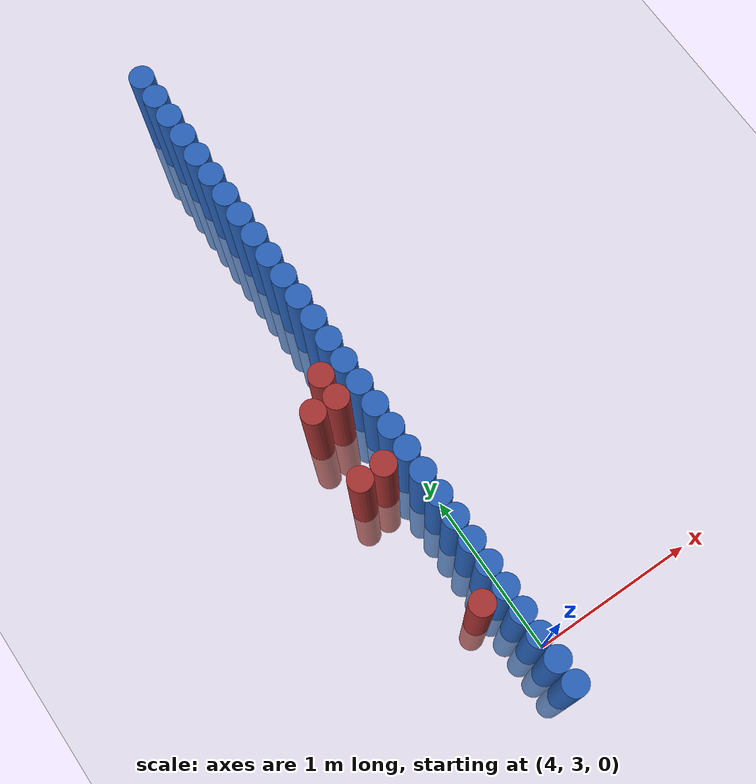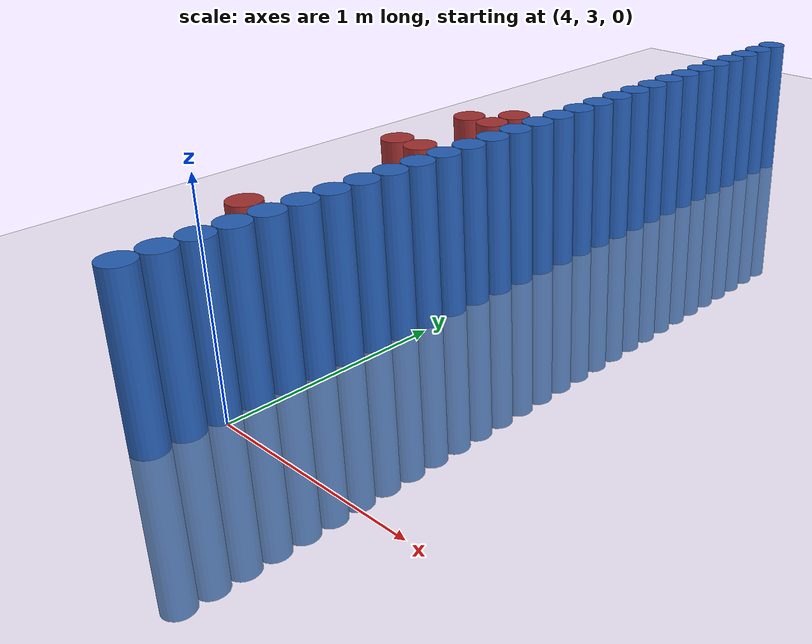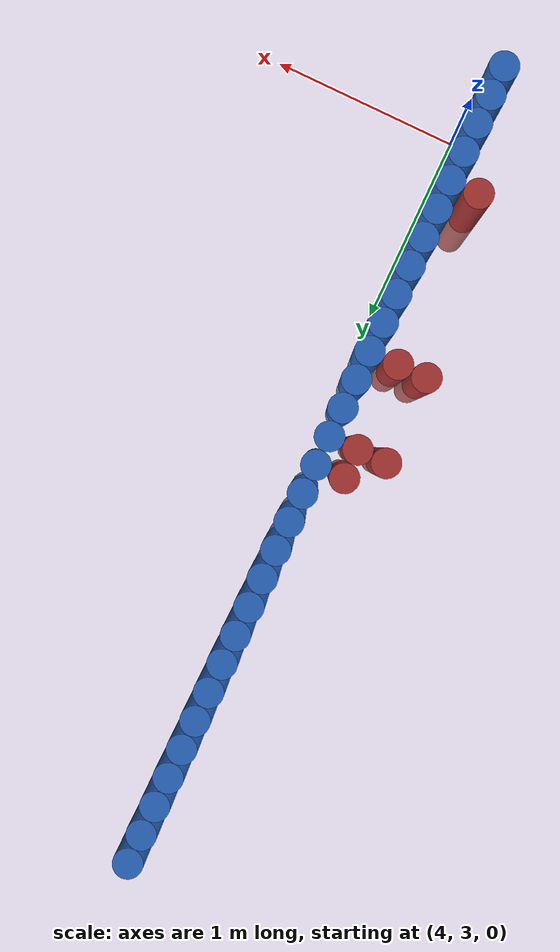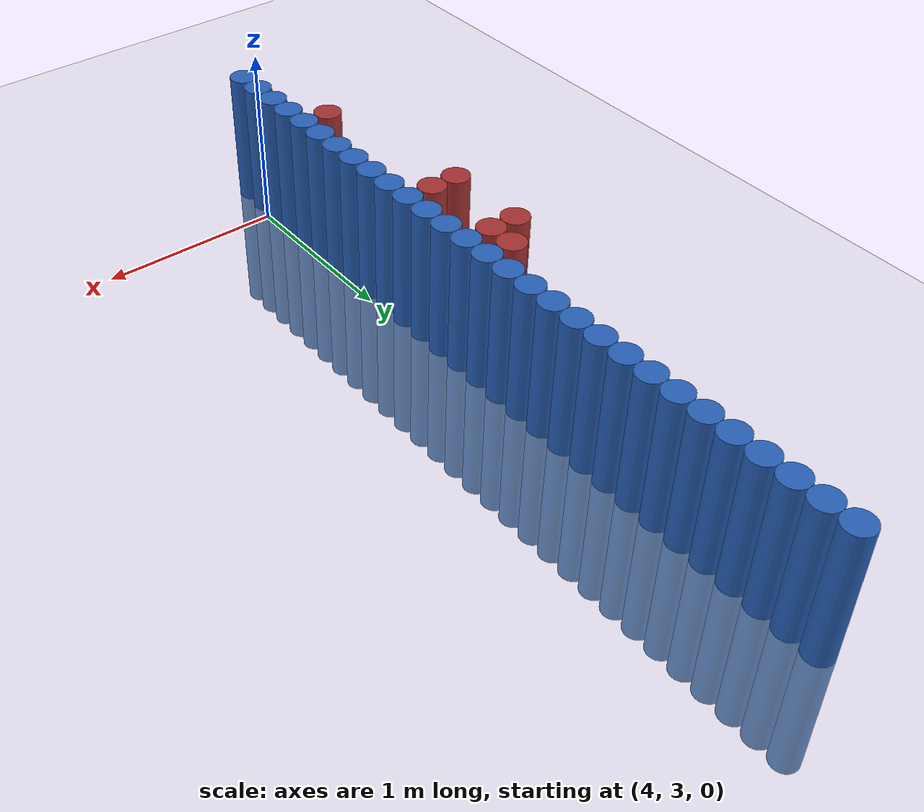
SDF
<sdf version="1.6">
 <world name="default">
  <model name="ground_plane">
   <static>1</static>
   <link name="link">
    <collision name="collision">
     <geometry><plane><normal>0 0 1</normal><size>100 100</size></plane></geometry>
     <surface><friction><ode><mu>100</mu><mu2>50</mu2></ode></friction></surface>
    </collision>
    <visual name="visual">
     <cast_shadows>0</cast_shadows>
     <geometry><plane><normal>0 0 1</normal><size>100 100</size></plane></geometry>
     <material>
      <script><uri>file://media/materials/scripts/gazebo.material</uri><name>Gazebo/Grey</name></script>
     </material>
    </visual>
   </link>
  </model>
  <model name="unit_cylinder_150">
   <static>1</static>
   <pose>3.925000 2.725000 0.000000 0.000000 0.000000 0.000000</pose>
   <link name="link">
    <inertial>
     <mass>1</mass>
     <inertia><ixx>0.145833</ixx><ixy>0</ixy><ixz>0</ixz><iyy>0.145833</iyy><iyz>0</iyz><izz>0.125</izz></inertia>
    </inertial>
    <collision name="collision">
     <geometry><cylinder><radius>0.075000</radius><length>1.5</length></cylinder></geometry>
    </collision>
    <visual name="visual">
     <geometry><cylinder><radius>0.075000</radius><length>1.5</length></cylinder></geometry>
     <material>
      <ambient>0.152000 0.379000 0.720000 1</ambient>
      <diffuse>0.152000 0.379000 0.720000 1</diffuse>
     </material>
     <material>
      <script><name>Gazebo/Grey</name><uri>file://media/materials/scripts/gazebo.material</uri></script>
     </material>
    </visual>
   </link>
  </model>
  <model name="unit_cylinder_152">
   <static>1</static>
   <pose>3.925000 2.875000 0.000000 0.000000 0.000000 0.000000</pose>
   <link name="link">
    <inertial>
     <mass>1</mass>
     <inertia><ixx>0.145833</ixx><ixy>0</ixy><ixz>0</ixz><iyy>0.145833</iyy><iyz>0</iyz><izz>0.125</izz></inertia>
    </inertial>
    <collision name="collision">
     <geometry><cylinder><radius>0.075000</radius><length>1.5</length></cylinder></geometry>
    </collision>
    <visual name="visual">
     <geometry><cylinder><radius>0.075000</radius><length>1.5</length></cylinder></geometry>
     <material>
      <ambient>0.152000 0.379000 0.720000 1</ambient>
      <diffuse>0.152000 0.379000 0.720000 1</diffuse>
     </material>
     <material>
      <script><name>Gazebo/Grey</name><uri>file://media/materials/scripts/gazebo.material</uri></script>
     </material>
    </visual>
   </link>
  </model>
  <model name="unit_cylinder_154">
   <static>1</static>
   <pose>3.925000 3.025000 0.000000 0.000000 0.000000 0.000000</pose>
   <link name="link">
    <inertial>
     <mass>1</mass>
     <inertia><ixx>0.145833</ixx><ixy>0</ixy><ixz>0</ixz><iyy>0.145833</iyy><iyz>0</iyz><izz>0.125</izz></inertia>
    </inertial>
    <collision name="collision">
     <geometry><cylinder><radius>0.075000</radius><length>1.5</length></cylinder></geometry>
    </collision>
    <visual name="visual">
     <geometry><cylinder><radius>0.075000</radius><length>1.5</length></cylinder></geometry>
     <material>
      <ambient>0.152000 0.379000 0.720000 1</ambient>
      <diffuse>0.152000 0.379000 0.720000 1</diffuse>
     </material>
     <material>
      <script><name>Gazebo/Grey</name><uri>file://media/materials/scripts/gazebo.material</uri></script>
     </material>
    </visual>
   </link>
  </model>
  <model name="unit_cylinder_156">
   <static>1</static>
   <pose>3.925000 3.175000 0.000000 0.000000 0.000000 0.000000</pose>
   <link name="link">
    <inertial>
     <mass>1</mass>
     <inertia><ixx>0.145833</ixx><ixy>0</ixy><ixz>0</ixz><iyy>0.145833</iyy><iyz>0</iyz><izz>0.125</izz></inertia>
    </inertial>
    <collision name="collision">
     <geometry><cylinder><radius>0.075000</radius><length>1.5</length></cylinder></geometry>
    </collision>
    <visual name="visual">
     <geometry><cylinder><radius>0.075000</radius><length>1.5</length></cylinder></geometry>
     <material>
      <ambient>0.152000 0.379000 0.720000 1</ambient>
      <diffuse>0.152000 0.379000 0.720000 1</diffuse>
     </material>
     <material>
      <script><name>Gazebo/Grey</name><uri>file://media/materials/scripts/gazebo.material</uri></script>
     </material>
    </visual>
   </link>
  </model>
  <model name="unit_cylinder_158">
   <static>1</static>
   <pose>3.925000 3.325000 0.000000 0.000000 0.000000 0.000000</pose>
   <link name="link">
    <inertial>
     <mass>1</mass>
     <inertia><ixx>0.145833</ixx><ixy>0</ixy><ixz>0</ixz><iyy>0.145833</iyy><iyz>0</iyz><izz>0.125</izz></inertia>
    </inertial>
    <collision name="collision">
     <geometry><cylinder><radius>0.075000</radius><length>1.5</length></cylinder></geometry>
    </collision>
    <visual name="visual">
     <geometry><cylinder><radius>0.075000</radius><length>1.5</length></cylinder></geometry>
     <material>
      <ambient>0.152000 0.379000 0.720000 1</ambient>
      <diffuse>0.152000 0.379000 0.720000 1</diffuse>
     </material>
     <material>
      <script><name>Gazebo/Grey</name><uri>file://media/materials/scripts/gazebo.material</uri></script>
     </material>
    </visual>
   </link>
  </model>
  <model name="unit_cylinder_160">
   <static>1</static>
   <pose>3.925000 3.475000 0.000000 0.000000 0.000000 0.000000</pose>
   <link name="link">
    <inertial>
     <mass>1</mass>
     <inertia><ixx>0.145833</ixx><ixy>0</ixy><ixz>0</ixz><iyy>0.145833</iyy><iyz>0</iyz><izz>0.125</izz></inertia>
    </inertial>
    <collision name="collision">
     <geometry><cylinder><radius>0.075000</radius><length>1.5</length></cylinder></geometry>
    </collision>
    <visual name="visual">
     <geometry><cylinder><radius>0.075000</radius><length>1.5</length></cylinder></geometry>
     <material>
      <ambient>0.152000 0.379000 0.720000 1</ambient>
      <diffuse>0.152000 0.379000 0.720000 1</diffuse>
     </material>
     <material>
      <script><name>Gazebo/Grey</name><uri>file://media/materials/scripts/gazebo.material</uri></script>
     </material>
    </visual>
   </link>
  </model>
  <model name="unit_cylinder_162">
   <static>1</static>
   <pose>3.925000 3.625000 0.000000 0.000000 0.000000 0.000000</pose>
   <link name="link">
    <inertial>
     <mass>1</mass>
     <inertia><ixx>0.145833</ixx><ixy>0</ixy><ixz>0</ixz><iyy>0.145833</iyy><iyz>0</iyz><izz>0.125</izz></inertia>
    </inertial>
    <collision name="collision">
     <geometry><cylinder><radius>0.075000</radius><length>1.5</length></cylinder></geometry>
    </collision>
    <visual name="visual">
     <geometry><cylinder><radius>0.075000</radius><length>1.5</length></cylinder></geometry>
     <material>
      <ambient>0.152000 0.379000 0.720000 1</ambient>
      <diffuse>0.152000 0.379000 0.720000 1</diffuse>
     </material>
     <material>
      <script><name>Gazebo/Grey</name><uri>file://media/materials/scripts/gazebo.material</uri></script>
     </material>
    </visual>
   </link>
  </model>
  <model name="unit_cylinder_164">
   <static>1</static>
   <pose>3.925000 3.775000 0.000000 0.000000 0.000000 0.000000</pose>
   <link name="link">
    <inertial>
     <mass>1</mass>
     <inertia><ixx>0.145833</ixx><ixy>0</ixy><ixz>0</ixz><iyy>0.145833</iyy><iyz>0</iyz><izz>0.125</izz></inertia>
    </inertial>
    <collision name="collision">
     <geometry><cylinder><radius>0.075000</radius><length>1.5</length></cylinder></geometry>
    </collision>
    <visual name="visual">
     <geometry><cylinder><radius>0.075000</radius><length>1.5</length></cylinder></geometry>
     <material>
      <ambient>0.152000 0.379000 0.720000 1</ambient>
      <diffuse>0.152000 0.379000 0.720000 1</diffuse>
     </material>
     <material>
      <script><name>Gazebo/Grey</name><uri>file://media/materials/scripts/gazebo.material</uri></script>
     </material>
    </visual>
   </link>
  </model>
  <model name="unit_cylinder_166">
   <static>1</static>
   <pose>3.925000 3.925000 0.000000 0.000000 0.000000 0.000000</pose>
   <link name="link">
    <inertial>
     <mass>1</mass>
     <inertia><ixx>0.145833</ixx><ixy>0</ixy><ixz>0</ixz><iyy>0.145833</iyy><iyz>0</iyz><izz>0.125</izz></inertia>
    </inertial>
    <collision name="collision">
     <geometry><cylinder><radius>0.075000</radius><length>1.5</length></cylinder></geometry>
    </collision>
    <visual name="visual">
     <geometry><cylinder><radius>0.075000</radius><length>1.5</length></cylinder></geometry>
     <material>
      <ambient>0.152000 0.379000 0.720000 1</ambient>
      <diffuse>0.152000 0.379000 0.720000 1</diffuse>
     </material>
     <material>
      <script><name>Gazebo/Grey</name><uri>file://media/materials/scripts/gazebo.material</uri></script>
     </material>
    </visual>
   </link>
  </model>
  <model name="unit_cylinder_168">
   <static>1</static>
   <pose>3.925000 4.075000 0.000000 0.000000 0.000000 0.000000</pose>
   <link name="link">
    <inertial>
     <mass>1</mass>
     <inertia><ixx>0.145833</ixx><ixy>0</ixy><ixz>0</ixz><iyy>0.145833</iyy><iyz>0</iyz><izz>0.125</izz></inertia>
    </inertial>
    <collision name="collision">
     <geometry><cylinder><radius>0.075000</radius><length>1.5</length></cylinder></geometry>
    </collision>
    <visual name="visual">
     <geometry><cylinder><radius>0.075000</radius><length>1.5</length></cylinder></geometry>
     <material>
      <ambient>0.152000 0.379000 0.720000 1</ambient>
      <diffuse>0.152000 0.379000 0.720000 1</diffuse>
     </material>
     <material>
      <script><name>Gazebo/Grey</name><uri>file://media/materials/scripts/gazebo.material</uri></script>
     </material>
    </visual>
   </link>
  </model>
  <model name="unit_cylinder_170">
   <static>1</static>
   <pose>3.925000 4.225000 0.000000 0.000000 0.000000 0.000000</pose>
   <link name="link">
    <inertial>
     <mass>1</mass>
     <inertia><ixx>0.145833</ixx><ixy>0</ixy><ixz>0</ixz><iyy>0.145833</iyy><iyz>0</iyz><izz>0.125</izz></inertia>
    </inertial>
    <collision name="collision">
     <geometry><cylinder><radius>0.075000</radius><length>1.5</length></cylinder></geometry>
    </collision>
    <visual name="visual">
     <geometry><cylinder><radius>0.075000</radius><length>1.5</length></cylinder></geometry>
     <material>
      <ambient>0.152000 0.379000 0.720000 1</ambient>
      <diffuse>0.152000 0.379000 0.720000 1</diffuse>
     </material>
     <material>
      <script><name>Gazebo/Grey</name><uri>file://media/materials/scripts/gazebo.material</uri></script>
     </material>
    </visual>
   </link>
  </model>
  <model name="unit_cylinder_172">
   <static>1</static>
   <pose>3.925000 4.375000 0.000000 0.000000 0.000000 0.000000</pose>
   <link name="link">
    <inertial>
     <mass>1</mass>
     <inertia><ixx>0.145833</ixx><ixy>0</ixy><ixz>0</ixz><iyy>0.145833</iyy><iyz>0</iyz><izz>0.125</izz></inertia>
    </inertial>
    <collision name="collision">
     <geometry><cylinder><radius>0.075000</radius><length>1.5</length></cylinder></geometry>
    </collision>
    <visual name="visual">
     <geometry><cylinder><radius>0.075000</radius><length>1.5</length></cylinder></geometry>
     <material>
      <ambient>0.152000 0.379000 0.720000 1</ambient>
      <diffuse>0.152000 0.379000 0.720000 1</diffuse>
     </material>
     <material>
      <script><name>Gazebo/Grey</name><uri>file://media/materials/scripts/gazebo.material</uri></script>
     </material>
    </visual>
   </link>
  </model>
  <model name="unit_cylinder_174">
   <static>1</static>
   <pose>3.925000 4.525000 0.000000 0.000000 0.000000 0.000000</pose>
   <link name="link">
    <inertial>
     <mass>1</mass>
     <inertia><ixx>0.145833</ixx><ixy>0</ixy><ixz>0</ixz><iyy>0.145833</iyy><iyz>0</iyz><izz>0.125</izz></inertia>
    </inertial>
    <collision name="collision">
     <geometry><cylinder><radius>0.075000</radius><length>1.5</length></cylinder></geometry>
    </collision>
    <visual name="visual">
     <geometry><cylinder><radius>0.075000</radius><length>1.5</length></cylinder></geometry>
     <material>
      <ambient>0.152000 0.379000 0.720000 1</ambient>
      <diffuse>0.152000 0.379000 0.720000 1</diffuse>
     </material>
     <material>
      <script><name>Gazebo/Grey</name><uri>file://media/materials/scripts/gazebo.material</uri></script>
     </material>
    </visual>
   </link>
  </model>
  <model name="unit_cylinder_176">
   <static>1</static>
   <pose>3.925000 4.675000 0.000000 0.000000 0.000000 0.000000</pose>
   <link name="link">
    <inertial>
     <mass>1</mass>
     <inertia><ixx>0.145833</ixx><ixy>0</ixy><ixz>0</ixz><iyy>0.145833</iyy><iyz>0</iyz><izz>0.125</izz></inertia>
    </inertial>
    <collision name="collision">
     <geometry><cylinder><radius>0.075000</radius><length>1.5</length></cylinder></geometry>
    </collision>
    <visual name="visual">
     <geometry><cylinder><radius>0.075000</radius><length>1.5</length></cylinder></geometry>
     <material>
      <ambient>0.152000 0.379000 0.720000 1</ambient>
      <diffuse>0.152000 0.379000 0.720000 1</diffuse>
     </material>
     <material>
      <script><name>Gazebo/Grey</name><uri>file://media/materials/scripts/gazebo.material</uri></script>
     </material>
    </visual>
   </link>
  </model>
  <model name="unit_cylinder_178">
   <static>1</static>
   <pose>3.925000 4.825000 0.000000 0.000000 0.000000 0.000000</pose>
   <link name="link">
    <inertial>
     <mass>1</mass>
     <inertia><ixx>0.145833</ixx><ixy>0</ixy><ixz>0</ixz><iyy>0.145833</iyy><iyz>0</iyz><izz>0.125</izz></inertia>
    </inertial>
    <collision name="collision">
     <geometry><cylinder><radius>0.075000</radius><length>1.5</length></cylinder></geometry>
    </collision>
    <visual name="visual">
     <geometry><cylinder><radius>0.075000</radius><length>1.5</length></cylinder></geometry>
     <material>
      <ambient>0.152000 0.379000 0.720000 1</ambient>
      <diffuse>0.152000 0.379000 0.720000 1</diffuse>
     </material>
     <material>
      <script><name>Gazebo/Grey</name><uri>file://media/materials/scripts/gazebo.material</uri></script>
     </material>
    </visual>
   </link>
  </model>
  <model name="unit_cylinder_180">
   <static>1</static>
   <pose>3.925000 4.975000 0.000000 0.000000 0.000000 0.000000</pose>
   <link name="link">
    <inertial>
     <mass>1</mass>
     <inertia><ixx>0.145833</ixx><ixy>0</ixy><ixz>0</ixz><iyy>0.145833</iyy><iyz>0</iyz><izz>0.125</izz></inertia>
    </inertial>
    <collision name="collision">
     <geometry><cylinder><radius>0.075000</radius><length>1.5</length></cylinder></geometry>
    </collision>
    <visual name="visual">
     <geometry><cylinder><radius>0.075000</radius><length>1.5</length></cylinder></geometry>
     <material>
      <ambient>0.152000 0.379000 0.720000 1</ambient>
      <diffuse>0.152000 0.379000 0.720000 1</diffuse>
     </material>
     <material>
      <script><name>Gazebo/Grey</name><uri>file://media/materials/scripts/gazebo.material</uri></script>
     </material>
    </visual>
   </link>
  </model>
  <model name="unit_cylinder_182">
   <static>1</static>
   <pose>3.925000 5.125000 0.000000 0.000000 0.000000 0.000000</pose>
   <link name="link">
    <inertial>
     <mass>1</mass>
     <inertia><ixx>0.145833</ixx><ixy>0</ixy><ixz>0</ixz><iyy>0.145833</iyy><iyz>0</iyz><izz>0.125</izz></inertia>
    </inertial>
    <collision name="collision">
     <geometry><cylinder><radius>0.075000</radius><length>1.5</length></cylinder></geometry>
    </collision>
    <visual name="visual">
     <geometry><cylinder><radius>0.075000</radius><length>1.5</length></cylinder></geometry>
     <material>
      <ambient>0.152000 0.379000 0.720000 1</ambient>
      <diffuse>0.152000 0.379000 0.720000 1</diffuse>
     </material>
     <material>
      <script><name>Gazebo/Grey</name><uri>file://media/materials/scripts/gazebo.material</uri></script>
     </material>
    </visual>
   </link>
  </model>
  <model name="unit_cylinder_184">
   <static>1</static>
   <pose>3.925000 5.275000 0.000000 0.000000 0.000000 0.000000</pose>
   <link name="link">
    <inertial>
     <mass>1</mass>
     <inertia><ixx>0.145833</ixx><ixy>0</ixy><ixz>0</ixz><iyy>0.145833</iyy><iyz>0</iyz><izz>0.125</izz></inertia>
    </inertial>
    <collision name="collision">
     <geometry><cylinder><radius>0.075000</radius><length>1.5</length></cylinder></geometry>
    </collision>
    <visual name="visual">
     <geometry><cylinder><radius>0.075000</radius><length>1.5</length></cylinder></geometry>
     <material>
      <ambient>0.152000 0.379000 0.720000 1</ambient>
      <diffuse>0.152000 0.379000 0.720000 1</diffuse>
     </material>
     <material>
      <script><name>Gazebo/Grey</name><uri>file://media/materials/scripts/gazebo.material</uri></script>
     </material>
    </visual>
   </link>
  </model>
  <model name="unit_cylinder_186">
   <static>1</static>
   <pose>3.925000 5.425000 0.000000 0.000000 0.000000 0.000000</pose>
   <link name="link">
    <inertial>
     <mass>1</mass>
     <inertia><ixx>0.145833</ixx><ixy>0</ixy><ixz>0</ixz><iyy>0.145833</iyy><iyz>0</iyz><izz>0.125</izz></inertia>
    </inertial>
    <collision name="collision">
     <geometry><cylinder><radius>0.075000</radius><length>1.5</length></cylinder></geometry>
    </collision>
    <visual name="visual">
     <geometry><cylinder><radius>0.075000</radius><length>1.5</length></cylinder></geometry>
     <material>
      <ambient>0.152000 0.379000 0.720000 1</ambient>
      <diffuse>0.152000 0.379000 0.720000 1</diffuse>
     </material>
     <material>
      <script><name>Gazebo/Grey</name><uri>file://media/materials/scripts/gazebo.material</uri></script>
     </material>
    </visual>
   </link>
  </model>
  <model name="unit_cylinder_188">
   <static>1</static>
   <pose>3.925000 5.575000 0.000000 0.000000 0.000000 0.000000</pose>
   <link name="link">
    <inertial>
     <mass>1</mass>
     <inertia><ixx>0.145833</ixx><ixy>0</ixy><ixz>0</ixz><iyy>0.145833</iyy><iyz>0</iyz><izz>0.125</izz></inertia>
    </inertial>
    <collision name="collision">
     <geometry><cylinder><radius>0.075000</radius><length>1.5</length></cylinder></geometry>
    </collision>
    <visual name="visual">
     <geometry><cylinder><radius>0.075000</radius><length>1.5</length></cylinder></geometry>
     <material>
      <ambient>0.152000 0.379000 0.720000 1</ambient>
      <diffuse>0.152000 0.379000 0.720000 1</diffuse>
     </material>
     <material>
      <script><name>Gazebo/Grey</name><uri>file://media/materials/scripts/gazebo.material</uri></script>
     </material>
    </visual>
   </link>
  </model>
  <model name="unit_cylinder_190">
   <static>1</static>
   <pose>3.925000 5.725000 0.000000 0.000000 0.000000 0.000000</pose>
   <link name="link">
    <inertial>
     <mass>1</mass>
     <inertia><ixx>0.145833</ixx><ixy>0</ixy><ixz>0</ixz><iyy>0.145833</iyy><iyz>0</iyz><izz>0.125</izz></inertia>
    </inertial>
    <collision name="collision">
     <geometry><cylinder><radius>0.075000</radius><length>1.5</length></cylinder></geometry>
    </collision>
    <visual name="visual">
     <geometry><cylinder><radius>0.075000</radius><length>1.5</length></cylinder></geometry>
     <material>
      <ambient>0.152000 0.379000 0.720000 1</ambient>
      <diffuse>0.152000 0.379000 0.720000 1</diffuse>
     </material>
     <material>
      <script><name>Gazebo/Grey</name><uri>file://media/materials/scripts/gazebo.material</uri></script>
     </material>
    </visual>
   </link>
  </model>
  <model name="unit_cylinder_192">
   <static>1</static>
   <pose>3.925000 5.875000 0.000000 0.000000 0.000000 0.000000</pose>
   <link name="link">
    <inertial>
     <mass>1</mass>
     <inertia><ixx>0.145833</ixx><ixy>0</ixy><ixz>0</ixz><iyy>0.145833</iyy><iyz>0</iyz><izz>0.125</izz></inertia>
    </inertial>
    <collision name="collision">
     <geometry><cylinder><radius>0.075000</radius><length>1.5</length></cylinder></geometry>
    </collision>
    <visual name="visual">
     <geometry><cylinder><radius>0.075000</radius><length>1.5</length></cylinder></geometry>
     <material>
      <ambient>0.152000 0.379000 0.720000 1</ambient>
      <diffuse>0.152000 0.379000 0.720000 1</diffuse>
     </material>
     <material>
      <script><name>Gazebo/Grey</name><uri>file://media/materials/scripts/gazebo.material</uri></script>
     </material>
    </visual>
   </link>
  </model>
  <model name="unit_cylinder_194">
   <static>1</static>
   <pose>3.925000 6.025000 0.000000 0.000000 0.000000 0.000000</pose>
   <link name="link">
    <inertial>
     <mass>1</mass>
     <inertia><ixx>0.145833</ixx><ixy>0</ixy><ixz>0</ixz><iyy>0.145833</iyy><iyz>0</iyz><izz>0.125</izz></inertia>
    </inertial>
    <collision name="collision">
     <geometry><cylinder><radius>0.075000</radius><length>1.5</length></cylinder></geometry>
    </collision>
    <visual name="visual">
     <geometry><cylinder><radius>0.075000</radius><length>1.5</length></cylinder></geometry>
     <material>
      <ambient>0.152000 0.379000 0.720000 1</ambient>
      <diffuse>0.152000 0.379000 0.720000 1</diffuse>
     </material>
     <material>
      <script><name>Gazebo/Grey</name><uri>file://media/materials/scripts/gazebo.material</uri></script>
     </material>
    </visual>
   </link>
  </model>
  <model name="unit_cylinder_196">
   <static>1</static>
   <pose>3.925000 6.175000 0.000000 0.000000 0.000000 0.000000</pose>
   <link name="link">
    <inertial>
     <mass>1</mass>
     <inertia><ixx>0.145833</ixx><ixy>0</ixy><ixz>0</ixz><iyy>0.145833</iyy><iyz>0</iyz><izz>0.125</izz></inertia>
    </inertial>
    <collision name="collision">
     <geometry><cylinder><radius>0.075000</radius><length>1.5</length></cylinder></geometry>
    </collision>
    <visual name="visual">
     <geometry><cylinder><radius>0.075000</radius><length>1.5</length></cylinder></geometry>
     <material>
      <ambient>0.152000 0.379000 0.720000 1</ambient>
      <diffuse>0.152000 0.379000 0.720000 1</diffuse>
     </material>
     <material>
      <script><name>Gazebo/Grey</name><uri>file://media/materials/scripts/gazebo.material</uri></script>
     </material>
    </visual>
   </link>
  </model>
  <model name="unit_cylinder_198">
   <static>1</static>
   <pose>3.925000 6.325000 0.000000 0.000000 0.000000 0.000000</pose>
   <link name="link">
    <inertial>
     <mass>1</mass>
     <inertia><ixx>0.145833</ixx><ixy>0</ixy><ixz>0</ixz><iyy>0.145833</iyy><iyz>0</iyz><izz>0.125</izz></inertia>
    </inertial>
    <collision name="collision">
     <geometry><cylinder><radius>0.075000</radius><length>1.5</length></cylinder></geometry>
    </collision>
    <visual name="visual">
     <geometry><cylinder><radius>0.075000</radius><length>1.5</length></cylinder></geometry>
     <material>
      <ambient>0.152000 0.379000 0.720000 1</ambient>
      <diffuse>0.152000 0.379000 0.720000 1</diffuse>
     </material>
     <material>
      <script><name>Gazebo/Grey</name><uri>file://media/materials/scripts/gazebo.material</uri></script>
     </material>
    </visual>
   </link>
  </model>
  <model name="unit_cylinder_200">
   <static>1</static>
   <pose>3.925000 6.475000 0.000000 0.000000 0.000000 0.000000</pose>
   <link name="link">
    <inertial>
     <mass>1</mass>
     <inertia><ixx>0.145833</ixx><ixy>0</ixy><ixz>0</ixz><iyy>0.145833</iyy><iyz>0</iyz><izz>0.125</izz></inertia>
    </inertial>
    <collision name="collision">
     <geometry><cylinder><radius>0.075000</radius><length>1.5</length></cylinder></geometry>
    </collision>
    <visual name="visual">
     <geometry><cylinder><radius>0.075000</radius><length>1.5</length></cylinder></geometry>
     <material>
      <ambient>0.152000 0.379000 0.720000 1</ambient>
      <diffuse>0.152000 0.379000 0.720000 1</diffuse>
     </material>
     <material>
      <script><name>Gazebo/Grey</name><uri>file://media/materials/scripts/gazebo.material</uri></script>
     </material>
    </visual>
   </link>
  </model>
  <model name="unit_cylinder_202">
   <static>1</static>
   <pose>3.925000 6.625000 0.000000 0.000000 0.000000 0.000000</pose>
   <link name="link">
    <inertial>
     <mass>1</mass>
     <inertia><ixx>0.145833</ixx><ixy>0</ixy><ixz>0</ixz><iyy>0.145833</iyy><iyz>0</iyz><izz>0.125</izz></inertia>
    </inertial>
    <collision name="collision">
     <geometry><cylinder><radius>0.075000</radius><length>1.5</length></cylinder></geometry>
    </collision>
    <visual name="visual">
     <geometry><cylinder><radius>0.075000</radius><length>1.5</length></cylinder></geometry>
     <material>
      <ambient>0.152000 0.379000 0.720000 1</ambient>
      <diffuse>0.152000 0.379000 0.720000 1</diffuse>
     </material>
     <material>
      <script><name>Gazebo/Grey</name><uri>file://media/materials/scripts/gazebo.material</uri></script>
     </material>
    </visual>
   </link>
  </model>
  <model name="unit_cylinder_204">
   <static>1</static>
   <pose>3.925000 6.775000 0.000000 0.000000 0.000000 0.000000</pose>
   <link name="link">
    <inertial>
     <mass>1</mass>
     <inertia><ixx>0.145833</ixx><ixy>0</ixy><ixz>0</ixz><iyy>0.145833</iyy><iyz>0</iyz><izz>0.125</izz></inertia>
    </inertial>
    <collision name="collision">
     <geometry><cylinder><radius>0.075000</radius><length>1.5</length></cylinder></geometry>
    </collision>
    <visual name="visual">
     <geometry><cylinder><radius>0.075000</radius><length>1.5</length></cylinder></geometry>
     <material>
      <ambient>0.152000 0.379000 0.720000 1</ambient>
      <diffuse>0.152000 0.379000 0.720000 1</diffuse>
     </material>
     <material>
      <script><name>Gazebo/Grey</name><uri>file://media/materials/scripts/gazebo.material</uri></script>
     </material>
    </visual>
   </link>
  </model>
  <model name="unit_cylinder_206">
   <static>1</static>
   <pose>3.925000 6.925000 0.000000 0.000000 0.000000 0.000000</pose>
   <link name="link">
    <inertial>
     <mass>1</mass>
     <inertia><ixx>0.145833</ixx><ixy>0</ixy><ixz>0</ixz><iyy>0.145833</iyy><iyz>0</iyz><izz>0.125</izz></inertia>
    </inertial>
    <collision name="collision">
     <geometry><cylinder><radius>0.075000</radius><length>1.5</length></cylinder></geometry>
    </collision>
    <visual name="visual">
     <geometry><cylinder><radius>0.075000</radius><length>1.5</length></cylinder></geometry>
     <material>
      <ambient>0.152000 0.379000 0.720000 1</ambient>
      <diffuse>0.152000 0.379000 0.720000 1</diffuse>
     </material>
     <material>
      <script><name>Gazebo/Grey</name><uri>file://media/materials/scripts/gazebo.material</uri></script>
     </material>
    </visual>
   </link>
  </model>
  <model name="unit_cylinder_561">
   <static>1</static>
   <pose>3.625000 4.225000 0.000000 0.000000 0.000000 0.000000</pose>
   <link name="link">
    <inertial>
     <mass>1</mass>
     <inertia><ixx>0.145833</ixx><ixy>0</ixy><ixz>0</ixz><iyy>0.145833</iyy><iyz>0</iyz><izz>0.125</izz></inertia>
    </inertial>
    <collision name="collision">
     <geometry><cylinder><radius>0.075000</radius><length>1.5</length></cylinder></geometry>
    </collision>
    <visual name="visual">
     <geometry><cylinder><radius>0.075000</radius><length>1.5</length></cylinder></geometry>
     <material>
      <ambient>0.648000 0.192000 0.192000 1</ambient>
      <diffuse>0.648000 0.192000 0.192000 1</diffuse>
     </material>
     <material>
      <script><name>Gazebo/Grey</name><uri>file://media/materials/scripts/gazebo.material</uri></script>
     </material>
    </visual>
   </link>
  </model>
  <model name="unit_cylinder_562">
   <static>1</static>
   <pose>3.625000 4.675000 0.000000 0.000000 0.000000 0.000000</pose>
   <link name="link">
    <inertial>
     <mass>1</mass>
     <inertia><ixx>0.145833</ixx><ixy>0</ixy><ixz>0</ixz><iyy>0.145833</iyy><iyz>0</iyz><izz>0.125</izz></inertia>
    </inertial>
    <collision name="collision">
     <geometry><cylinder><radius>0.075000</radius><length>1.5</length></cylinder></geometry>
    </collision>
    <visual name="visual">
     <geometry><cylinder><radius>0.075000</radius><length>1.5</length></cylinder></geometry>
     <material>
      <ambient>0.648000 0.192000 0.192000 1</ambient>
      <diffuse>0.648000 0.192000 0.192000 1</diffuse>
     </material>
     <material>
      <script><name>Gazebo/Grey</name><uri>file://media/materials/scripts/gazebo.material</uri></script>
     </material>
    </visual>
   </link>
  </model>
  <model name="unit_cylinder_583">
   <static>1</static>
   <pose>3.775000 3.325000 0.000000 0.000000 0.000000 0.000000</pose>
   <link name="link">
    <inertial>
     <mass>1</mass>
     <inertia><ixx>0.145833</ixx><ixy>0</ixy><ixz>0</ixz><iyy>0.145833</iyy><iyz>0</iyz><izz>0.125</izz></inertia>
    </inertial>
    <collision name="collision">
     <geometry><cylinder><radius>0.075000</radius><length>1.5</length></cylinder></geometry>
    </collision>
    <visual name="visual">
     <geometry><cylinder><radius>0.075000</radius><length>1.5</length></cylinder></geometry>
     <material>
      <ambient>0.648000 0.192000 0.192000 1</ambient>
      <diffuse>0.648000 0.192000 0.192000 1</diffuse>
     </material>
     <material>
      <script><name>Gazebo/Grey</name><uri>file://media/materials/scripts/gazebo.material</uri></script>
     </material>
    </visual>
   </link>
  </model>
  <model name="unit_cylinder_584">
   <static>1</static>
   <pose>3.775000 4.225000 0.000000 0.000000 0.000000 0.000000</pose>
   <link name="link">
    <inertial>
     <mass>1</mass>
     <inertia><ixx>0.145833</ixx><ixy>0</ixy><ixz>0</ixz><iyy>0.145833</iyy><iyz>0</iyz><izz>0.125</izz></inertia>
    </inertial>
    <collision name="collision">
     <geometry><cylinder><radius>0.075000</radius><length>1.5</length></cylinder></geometry>
    </collision>
    <visual name="visual">
     <geometry><cylinder><radius>0.075000</radius><length>1.5</length></cylinder></geometry>
     <material>
      <ambient>0.648000 0.192000 0.192000 1</ambient>
      <diffuse>0.648000 0.192000 0.192000 1</diffuse>
     </material>
     <material>
      <script><name>Gazebo/Grey</name><uri>file://media/materials/scripts/gazebo.material</uri></script>
     </material>
    </visual>
   </link>
  </model>
  <model name="unit_cylinder_585">
   <static>1</static>
   <pose>3.775000 4.675000 0.000000 0.000000 0.000000 0.000000</pose>
   <link name="link">
    <inertial>
     <mass>1</mass>
     <inertia><ixx>0.145833</ixx><ixy>0</ixy><ixz>0</ixz><iyy>0.145833</iyy><iyz>0</iyz><izz>0.125</izz></inertia>
    </inertial>
    <collision name="collision">
     <geometry><cylinder><radius>0.075000</radius><length>1.5</length></cylinder></geometry>
    </collision>
    <visual name="visual">
     <geometry><cylinder><radius>0.075000</radius><length>1.5</length></cylinder></geometry>
     <material>
      <ambient>0.648000 0.192000 0.192000 1</ambient>
      <diffuse>0.648000 0.192000 0.192000 1</diffuse>
     </material>
     <material>
      <script><name>Gazebo/Grey</name><uri>file://media/materials/scripts/gazebo.material</uri></script>
     </material>
    </visual>
   </link>
  </model>
  <model name="unit_cylinder_586">
   <static>1</static>
   <pose>3.775000 4.825000 0.000000 0.000000 0.000000 0.000000</pose>
   <link name="link">
    <inertial>
     <mass>1</mass>
     <inertia><ixx>0.145833</ixx><ixy>0</ixy><ixz>0</ixz><iyy>0.145833</iyy><iyz>0</iyz><izz>0.125</izz></inertia>
    </inertial>
    <collision name="collision">
     <geometry><cylinder><radius>0.075000</radius><length>1.5</length></cylinder></geometry>
    </collision>
    <visual name="visual">
     <geometry><cylinder><radius>0.075000</radius><length>1.5</length></cylinder></geometry>
     <material>
      <ambient>0.648000 0.192000 0.192000 1</ambient>
      <diffuse>0.648000 0.192000 0.192000 1</diffuse>
     </material>
     <material>
      <script><name>Gazebo/Grey</name><uri>file://media/materials/scripts/gazebo.material</uri></script>
     </material>
    </visual>
   </link>
  </model>
  <model name="unit_cylinder_618">
   <static>1</static>
   <pose>3.925000 2.725000 0.000000 0.000000 0.000000 0.000000</pose>
   <link name="link">
    <inertial>
     <mass>1</mass>
     <inertia><ixx>0.145833</ixx><ixy>0</ixy><ixz>0</ixz><iyy>0.145833</iyy><iyz>0</iyz><izz>0.125</izz></inertia>
    </inertial>
    <collision name="collision">
     <geometry><cylinder><radius>0.075000</radius><length>1.5</length></cylinder></geometry>
    </collision>
    <visual name="visual">
     <geometry><cylinder><radius>0.075000</radius><length>1.5</length></cylinder></geometry>
     <material>
      <ambient>0.152000 0.379000 0.720000 1</ambient>
      <diffuse>0.152000 0.379000 0.720000 1</diffuse>
     </material>
     <material>
      <script><name>Gazebo/Grey</name><uri>file://media/materials/scripts/gazebo.material</uri></script>
     </material>
    </visual>
   </link>
  </model>
  <model name="unit_cylinder_619">
   <static>1</static>
   <pose>3.925000 2.875000 0.000000 0.000000 0.000000 0.000000</pose>
   <link name="link">
    <inertial>
     <mass>1</mass>
     <inertia><ixx>0.145833</ixx><ixy>0</ixy><ixz>0</ixz><iyy>0.145833</iyy><iyz>0</iyz><izz>0.125</izz></inertia>
    </inertial>
    <collision name="collision">
     <geometry><cylinder><radius>0.075000</radius><length>1.5</length></cylinder></geometry>
    </collision>
    <visual name="visual">
     <geometry><cylinder><radius>0.075000</radius><length>1.5</length></cylinder></geometry>
     <material>
      <ambient>0.152000 0.379000 0.720000 1</ambient>
      <diffuse>0.152000 0.379000 0.720000 1</diffuse>
     </material>
     <material>
      <script><name>Gazebo/Grey</name><uri>file://media/materials/scripts/gazebo.material</uri></script>
     </material>
    </visual>
   </link>
  </model>
  <model name="unit_cylinder_620">
   <static>1</static>
   <pose>3.925000 3.025000 0.000000 0.000000 0.000000 0.000000</pose>
   <link name="link">
    <inertial>
     <mass>1</mass>
     <inertia><ixx>0.145833</ixx><ixy>0</ixy><ixz>0</ixz><iyy>0.145833</iyy><iyz>0</iyz><izz>0.125</izz></inertia>
    </inertial>
    <collision name="collision">
     <geometry><cylinder><radius>0.075000</radius><length>1.5</length></cylinder></geometry>
    </collision>
    <visual name="visual">
     <geometry><cylinder><radius>0.075000</radius><length>1.5</length></cylinder></geometry>
     <material>
      <ambient>0.152000 0.379000 0.720000 1</ambient>
      <diffuse>0.152000 0.379000 0.720000 1</diffuse>
     </material>
     <material>
      <script><name>Gazebo/Grey</name><uri>file://media/materials/scripts/gazebo.material</uri></script>
     </material>
    </visual>
   </link>
  </model>
  <model name="unit_cylinder_621">
   <static>1</static>
   <pose>3.925000 3.175000 0.000000 0.000000 0.000000 0.000000</pose>
   <link name="link">
    <inertial>
     <mass>1</mass>
     <inertia><ixx>0.145833</ixx><ixy>0</ixy><ixz>0</ixz><iyy>0.145833</iyy><iyz>0</iyz><izz>0.125</izz></inertia>
    </inertial>
    <collision name="collision">
     <geometry><cylinder><radius>0.075000</radius><length>1.5</length></cylinder></geometry>
    </collision>
    <visual name="visual">
     <geometry><cylinder><radius>0.075000</radius><length>1.5</length></cylinder></geometry>
     <material>
      <ambient>0.152000 0.379000 0.720000 1</ambient>
      <diffuse>0.152000 0.379000 0.720000 1</diffuse>
     </material>
     <material>
      <script><name>Gazebo/Grey</name><uri>file://media/materials/scripts/gazebo.material</uri></script>
     </material>
    </visual>
   </link>
  </model>
  <model name="unit_cylinder_622">
   <static>1</static>
   <pose>3.925000 3.325000 0.000000 0.000000 0.000000 0.000000</pose>
   <link name="link">
    <inertial>
     <mass>1</mass>
     <inertia><ixx>0.145833</ixx><ixy>0</ixy><ixz>0</ixz><iyy>0.145833</iyy><iyz>0</iyz><izz>0.125</izz></inertia>
    </inertial>
    <collision name="collision">
     <geometry><cylinder><radius>0.075000</radius><length>1.5</length></cylinder></geometry>
    </collision>
    <visual name="visual">
     <geometry><cylinder><radius>0.075000</radius><length>1.5</length></cylinder></geometry>
     <material>
      <ambient>0.152000 0.379000 0.720000 1</ambient>
      <diffuse>0.152000 0.379000 0.720000 1</diffuse>
     </material>
     <material>
      <script><name>Gazebo/Grey</name><uri>file://media/materials/scripts/gazebo.material</uri></script>
     </material>
    </visual>
   </link>
  </model>
  <model name="unit_cylinder_623">
   <static>1</static>
   <pose>3.925000 3.475000 0.000000 0.000000 0.000000 0.000000</pose>
   <link name="link">
    <inertial>
     <mass>1</mass>
     <inertia><ixx>0.145833</ixx><ixy>0</ixy><ixz>0</ixz><iyy>0.145833</iyy><iyz>0</iyz><izz>0.125</izz></inertia>
    </inertial>
    <collision name="collision">
     <geometry><cylinder><radius>0.075000</radius><length>1.5</length></cylinder></geometry>
    </collision>
    <visual name="visual">
     <geometry><cylinder><radius>0.075000</radius><length>1.5</length></cylinder></geometry>
     <material>
      <ambient>0.152000 0.379000 0.720000 1</ambient>
      <diffuse>0.152000 0.379000 0.720000 1</diffuse>
     </material>
     <material>
      <script><name>Gazebo/Grey</name><uri>file://media/materials/scripts/gazebo.material</uri></script>
     </material>
    </visual>
   </link>
  </model>
  <model name="unit_cylinder_624">
   <static>1</static>
   <pose>3.925000 3.625000 0.000000 0.000000 0.000000 0.000000</pose>
   <link name="link">
    <inertial>
     <mass>1</mass>
     <inertia><ixx>0.145833</ixx><ixy>0</ixy><ixz>0</ixz><iyy>0.145833</iyy><iyz>0</iyz><izz>0.125</izz></inertia>
    </inertial>
    <collision name="collision">
     <geometry><cylinder><radius>0.075000</radius><length>1.5</length></cylinder></geometry>
    </collision>
    <visual name="visual">
     <geometry><cylinder><radius>0.075000</radius><length>1.5</length></cylinder></geometry>
     <material>
      <ambient>0.152000 0.379000 0.720000 1</ambient>
      <diffuse>0.152000 0.379000 0.720000 1</diffuse>
     </material>
     <material>
      <script><name>Gazebo/Grey</name><uri>file://media/materials/scripts/gazebo.material</uri></script>
     </material>
    </visual>
   </link>
  </model>
  <model name="unit_cylinder_625">
   <static>1</static>
   <pose>3.925000 3.775000 0.000000 0.000000 0.000000 0.000000</pose>
   <link name="link">
    <inertial>
     <mass>1</mass>
     <inertia><ixx>0.145833</ixx><ixy>0</ixy><ixz>0</ixz><iyy>0.145833</iyy><iyz>0</iyz><izz>0.125</izz></inertia>
    </inertial>
    <collision name="collision">
     <geometry><cylinder><radius>0.075000</radius><length>1.5</length></cylinder></geometry>
    </collision>
    <visual name="visual">
     <geometry><cylinder><radius>0.075000</radius><length>1.5</length></cylinder></geometry>
     <material>
      <ambient>0.152000 0.379000 0.720000 1</ambient>
      <diffuse>0.152000 0.379000 0.720000 1</diffuse>
     </material>
     <material>
      <script><name>Gazebo/Grey</name><uri>file://media/materials/scripts/gazebo.material</uri></script>
     </material>
    </visual>
   </link>
  </model>
  <model name="unit_cylinder_626">
   <static>1</static>
   <pose>3.925000 3.925000 0.000000 0.000000 0.000000 0.000000</pose>
   <link name="link">
    <inertial>
     <mass>1</mass>
     <inertia><ixx>0.145833</ixx><ixy>0</ixy><ixz>0</ixz><iyy>0.145833</iyy><iyz>0</iyz><izz>0.125</izz></inertia>
    </inertial>
    <collision name="collision">
     <geometry><cylinder><radius>0.075000</radius><length>1.5</length></cylinder></geometry>
    </collision>
    <visual name="visual">
     <geometry><cylinder><radius>0.075000</radius><length>1.5</length></cylinder></geometry>
     <material>
      <ambient>0.152000 0.379000 0.720000 1</ambient>
      <diffuse>0.152000 0.379000 0.720000 1</diffuse>
     </material>
     <material>
      <script><name>Gazebo/Grey</name><uri>file://media/materials/scripts/gazebo.material</uri></script>
     </material>
    </visual>
   </link>
  </model>
  <model name="unit_cylinder_627">
   <static>1</static>
   <pose>3.925000 4.075000 0.000000 0.000000 0.000000 0.000000</pose>
   <link name="link">
    <inertial>
     <mass>1</mass>
     <inertia><ixx>0.145833</ixx><ixy>0</ixy><ixz>0</ixz><iyy>0.145833</iyy><iyz>0</iyz><izz>0.125</izz></inertia>
    </inertial>
    <collision name="collision">
     <geometry><cylinder><radius>0.075000</radius><length>1.5</length></cylinder></geometry>
    </collision>
    <visual name="visual">
     <geometry><cylinder><radius>0.075000</radius><length>1.5</length></cylinder></geometry>
     <material>
      <ambient>0.152000 0.379000 0.720000 1</ambient>
      <diffuse>0.152000 0.379000 0.720000 1</diffuse>
     </material>
     <material>
      <script><name>Gazebo/Grey</name><uri>file://media/materials/scripts/gazebo.material</uri></script>
     </material>
    </visual>
   </link>
  </model>
  <model name="unit_cylinder_628">
   <static>1</static>
   <pose>3.925000 4.225000 0.000000 0.000000 0.000000 0.000000</pose>
   <link name="link">
    <inertial>
     <mass>1</mass>
     <inertia><ixx>0.145833</ixx><ixy>0</ixy><ixz>0</ixz><iyy>0.145833</iyy><iyz>0</iyz><izz>0.125</izz></inertia>
    </inertial>
    <collision name="collision">
     <geometry><cylinder><radius>0.075000</radius><length>1.5</length></cylinder></geometry>
    </collision>
    <visual name="visual">
     <geometry><cylinder><radius>0.075000</radius><length>1.5</length></cylinder></geometry>
     <material>
      <ambient>0.152000 0.379000 0.720000 1</ambient>
      <diffuse>0.152000 0.379000 0.720000 1</diffuse>
     </material>
     <material>
      <script><name>Gazebo/Grey</name><uri>file://media/materials/scripts/gazebo.material</uri></script>
     </material>
    </visual>
   </link>
  </model>
  <model name="unit_cylinder_629">
   <static>1</static>
   <pose>3.925000 4.375000 0.000000 0.000000 0.000000 0.000000</pose>
   <link name="link">
    <inertial>
     <mass>1</mass>
     <inertia><ixx>0.145833</ixx><ixy>0</ixy><ixz>0</ixz><iyy>0.145833</iyy><iyz>0</iyz><izz>0.125</izz></inertia>
    </inertial>
    <collision name="collision">
     <geometry><cylinder><radius>0.075000</radius><length>1.5</length></cylinder></geometry>
    </collision>
    <visual name="visual">
     <geometry><cylinder><radius>0.075000</radius><length>1.5</length></cylinder></geometry>
     <material>
      <ambient>0.152000 0.379000 0.720000 1</ambient>
      <diffuse>0.152000 0.379000 0.720000 1</diffuse>
     </material>
     <material>
      <script><name>Gazebo/Grey</name><uri>file://media/materials/scripts/gazebo.material</uri></script>
     </material>
    </visual>
   </link>
  </model>
  <model name="unit_cylinder_630">
   <static>1</static>
   <pose>3.925000 4.525000 0.000000 0.000000 0.000000 0.000000</pose>
   <link name="link">
    <inertial>
     <mass>1</mass>
     <inertia><ixx>0.145833</ixx><ixy>0</ixy><ixz>0</ixz><iyy>0.145833</iyy><iyz>0</iyz><izz>0.125</izz></inertia>
    </inertial>
    <collision name="collision">
     <geometry><cylinder><radius>0.075000</radius><length>1.5</length></cylinder></geometry>
    </collision>
    <visual name="visual">
     <geometry><cylinder><radius>0.075000</radius><length>1.5</length></cylinder></geometry>
     <material>
      <ambient>0.152000 0.379000 0.720000 1</ambient>
      <diffuse>0.152000 0.379000 0.720000 1</diffuse>
     </material>
     <material>
      <script><name>Gazebo/Grey</name><uri>file://media/materials/scripts/gazebo.material</uri></script>
     </material>
    </visual>
   </link>
  </model>
  <model name="unit_cylinder_631">
   <static>1</static>
   <pose>3.925000 4.675000 0.000000 0.000000 0.000000 0.000000</pose>
   <link name="link">
    <inertial>
     <mass>1</mass>
     <inertia><ixx>0.145833</ixx><ixy>0</ixy><ixz>0</ixz><iyy>0.145833</iyy><iyz>0</iyz><izz>0.125</izz></inertia>
    </inertial>
    <collision name="collision">
     <geometry><cylinder><radius>0.075000</radius><length>1.5</length></cylinder></geometry>
    </collision>
    <visual name="visual">
     <geometry><cylinder><radius>0.075000</radius><length>1.5</length></cylinder></geometry>
     <material>
      <ambient>0.152000 0.379000 0.720000 1</ambient>
      <diffuse>0.152000 0.379000 0.720000 1</diffuse>
     </material>
     <material>
      <script><name>Gazebo/Grey</name><uri>file://media/materials/scripts/gazebo.material</uri></script>
     </material>
    </visual>
   </link>
  </model>
  <model name="unit_cylinder_632">
   <static>1</static>
   <pose>3.925000 4.825000 0.000000 0.000000 0.000000 0.000000</pose>
   <link name="link">
    <inertial>
     <mass>1</mass>
     <inertia><ixx>0.145833</ixx><ixy>0</ixy><ixz>0</ixz><iyy>0.145833</iyy><iyz>0</iyz><izz>0.125</izz></inertia>
    </inertial>
    <collision name="collision">
     <geometry><cylinder><radius>0.075000</radius><length>1.5</length></cylinder></geometry>
    </collision>
    <visual name="visual">
     <geometry><cylinder><radius>0.075000</radius><length>1.5</length></cylinder></geometry>
     <material>
      <ambient>0.152000 0.379000 0.720000 1</ambient>
      <diffuse>0.152000 0.379000 0.720000 1</diffuse>
     </material>
     <material>
      <script><name>Gazebo/Grey</name><uri>file://media/materials/scripts/gazebo.material</uri></script>
     </material>
    </visual>
   </link>
  </model>
  <model name="unit_cylinder_633">
   <static>1</static>
   <pose>3.925000 4.975000 0.000000 0.000000 0.000000 0.000000</pose>
   <link name="link">
    <inertial>
     <mass>1</mass>
     <inertia><ixx>0.145833</ixx><ixy>0</ixy><ixz>0</ixz><iyy>0.145833</iyy><iyz>0</iyz><izz>0.125</izz></inertia>
    </inertial>
    <collision name="collision">
     <geometry><cylinder><radius>0.075000</radius><length>1.5</length></cylinder></geometry>
    </collision>
    <visual name="visual">
     <geometry><cylinder><radius>0.075000</radius><length>1.5</length></cylinder></geometry>
     <material>
      <ambient>0.152000 0.379000 0.720000 1</ambient>
      <diffuse>0.152000 0.379000 0.720000 1</diffuse>
     </material>
     <material>
      <script><name>Gazebo/Grey</name><uri>file://media/materials/scripts/gazebo.material</uri></script>
     </material>
    </visual>
   </link>
  </model>
  <model name="unit_cylinder_634">
   <static>1</static>
   <pose>3.925000 5.125000 0.000000 0.000000 0.000000 0.000000</pose>
   <link name="link">
    <inertial>
     <mass>1</mass>
     <inertia><ixx>0.145833</ixx><ixy>0</ixy><ixz>0</ixz><iyy>0.145833</iyy><iyz>0</iyz><izz>0.125</izz></inertia>
    </inertial>
    <collision name="collision">
     <geometry><cylinder><radius>0.075000</radius><length>1.5</length></cylinder></geometry>
    </collision>
    <visual name="visual">
     <geometry><cylinder><radius>0.075000</radius><length>1.5</length></cylinder></geometry>
     <material>
      <ambient>0.152000 0.379000 0.720000 1</ambient>
      <diffuse>0.152000 0.379000 0.720000 1</diffuse>
     </material>
     <material>
      <script><name>Gazebo/Grey</name><uri>file://media/materials/scripts/gazebo.material</uri></script>
     </material>
    </visual>
   </link>
  </model>
  <model name="unit_cylinder_635">
   <static>1</static>
   <pose>3.925000 5.275000 0.000000 0.000000 0.000000 0.000000</pose>
   <link name="link">
    <inertial>
     <mass>1</mass>
     <inertia><ixx>0.145833</ixx><ixy>0</ixy><ixz>0</ixz><iyy>0.145833</iyy><iyz>0</iyz><izz>0.125</izz></inertia>
    </inertial>
    <collision name="collision">
     <geometry><cylinder><radius>0.075000</radius><length>1.5</length></cylinder></geometry>
    </collision>
    <visual name="visual">
     <geometry><cylinder><radius>0.075000</radius><length>1.5</length></cylinder></geometry>
     <material>
      <ambient>0.152000 0.379000 0.720000 1</ambient>
      <diffuse>0.152000 0.379000 0.720000 1</diffuse>
     </material>
     <material>
      <script><name>Gazebo/Grey</name><uri>file://media/materials/scripts/gazebo.material</uri></script>
     </material>
    </visual>
   </link>
  </model>
  <model name="unit_cylinder_636">
   <static>1</static>
   <pose>3.925000 5.425000 0.000000 0.000000 0.000000 0.000000</pose>
   <link name="link">
    <inertial>
     <mass>1</mass>
     <inertia><ixx>0.145833</ixx><ixy>0</ixy><ixz>0</ixz><iyy>0.145833</iyy><iyz>0</iyz><izz>0.125</izz></inertia>
    </inertial>
    <collision name="collision">
     <geometry><cylinder><radius>0.075000</radius><length>1.5</length></cylinder></geometry>
    </collision>
    <visual name="visual">
     <geometry><cylinder><radius>0.075000</radius><length>1.5</length></cylinder></geometry>
     <material>
      <ambient>0.152000 0.379000 0.720000 1</ambient>
      <diffuse>0.152000 0.379000 0.720000 1</diffuse>
     </material>
     <material>
      <script><name>Gazebo/Grey</name><uri>file://media/materials/scripts/gazebo.material</uri></script>
     </material>
    </visual>
   </link>
  </model>
 </world>
</sdf>
